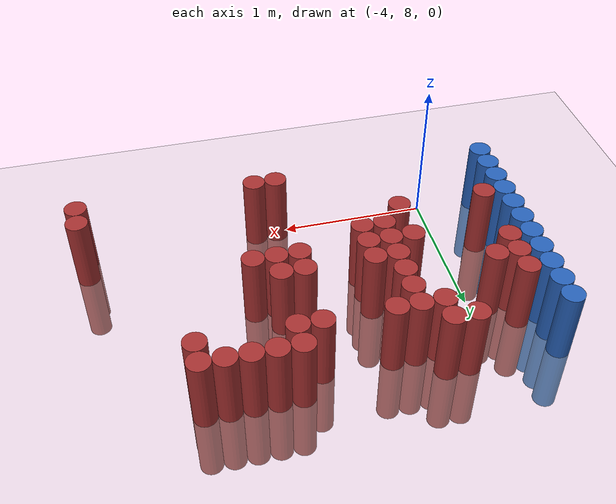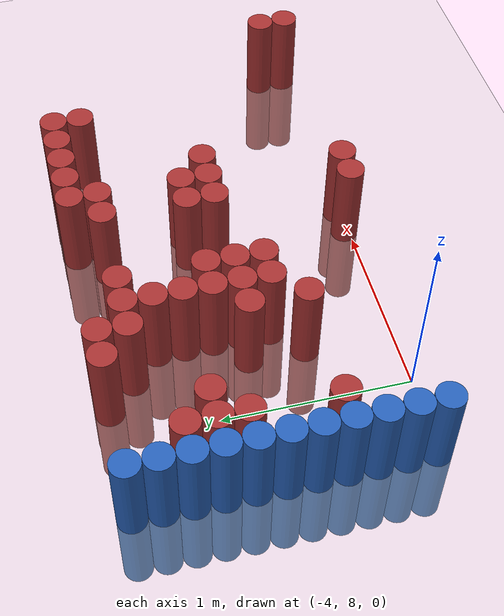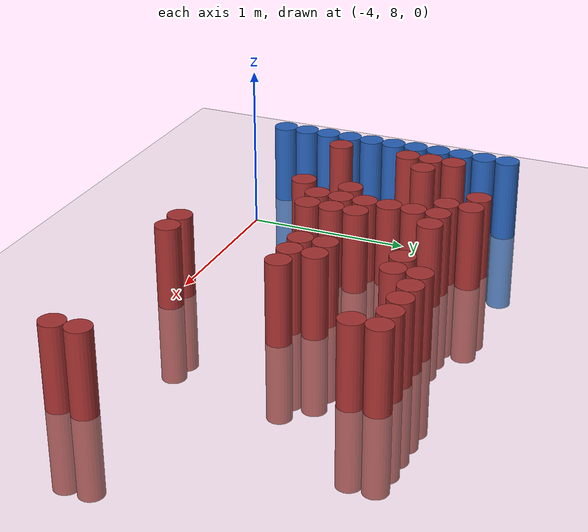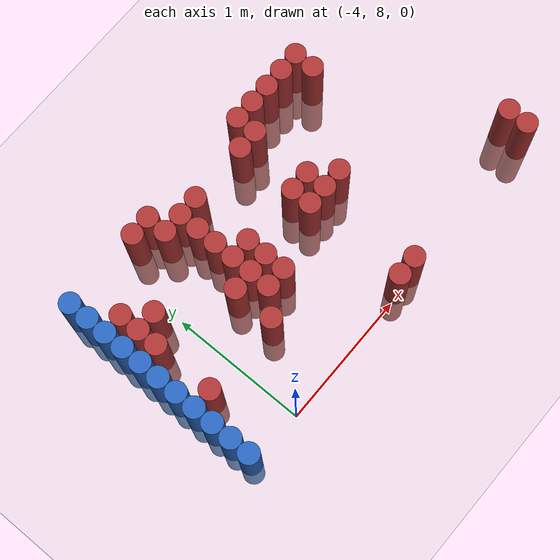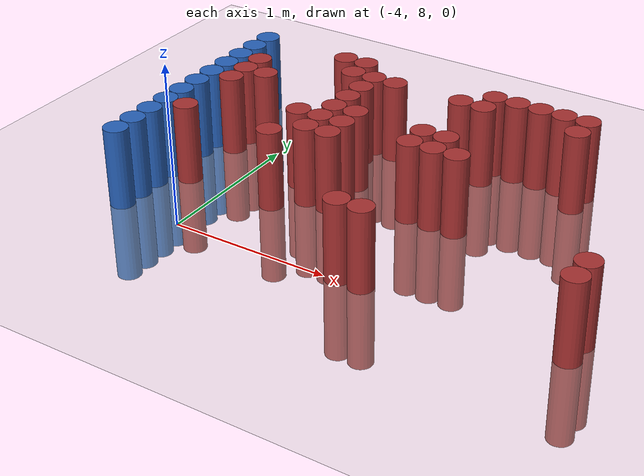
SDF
<sdf version="1.6">
 <world name="default">
  <model name="ground_plane">
   <static>1</static>
   <link name="link">
    <collision name="collision">
     <geometry><plane><normal>0 0 1</normal><size>100 100</size></plane></geometry>
     <surface><friction><ode><mu>100</mu><mu2>50</mu2></ode></friction></surface>
    </collision>
    <visual name="visual">
     <cast_shadows>0</cast_shadows>
     <geometry><plane><normal>0 0 1</normal><size>100 100</size></plane></geometry>
     <material>
      <script><uri>file://media/materials/scripts/gazebo.material</uri><name>Gazebo/Grey</name></script>
     </material>
    </visual>
   </link>
  </model>
  <model name="unit_cylinder_115">
   <static>1</static>
   <pose>-4.425000 8.025000 0.000000 0.000000 0.000000 0.000000</pose>
   <link name="link">
    <inertial>
     <mass>1</mass>
     <inertia><ixx>0.145833</ixx><ixy>0</ixy><ixz>0</ixz><iyy>0.145833</iyy><iyz>0</iyz><izz>0.125</izz></inertia>
    </inertial>
    <collision name="collision">
     <geometry><cylinder><radius>0.075000</radius><length>1</length></cylinder></geometry>
    </collision>
    <visual name="visual">
     <geometry><cylinder><radius>0.075000</radius><length>1</length></cylinder></geometry>
     <material>
      <ambient>0.152000 0.379000 0.720000 1</ambient>
      <diffuse>0.152000 0.379000 0.720000 1</diffuse>
     </material>
     <material>
      <script><name>Gazebo/Grey</name><uri>file://media/materials/scripts/gazebo.material</uri></script>
     </material>
    </visual>
   </link>
  </model>
  <model name="unit_cylinder_116">
   <static>1</static>
   <pose>-4.425000 8.175000 0.000000 0.000000 0.000000 0.000000</pose>
   <link name="link">
    <inertial>
     <mass>1</mass>
     <inertia><ixx>0.145833</ixx><ixy>0</ixy><ixz>0</ixz><iyy>0.145833</iyy><iyz>0</iyz><izz>0.125</izz></inertia>
    </inertial>
    <collision name="collision">
     <geometry><cylinder><radius>0.075000</radius><length>1</length></cylinder></geometry>
    </collision>
    <visual name="visual">
     <geometry><cylinder><radius>0.075000</radius><length>1</length></cylinder></geometry>
     <material>
      <ambient>0.152000 0.379000 0.720000 1</ambient>
      <diffuse>0.152000 0.379000 0.720000 1</diffuse>
     </material>
     <material>
      <script><name>Gazebo/Grey</name><uri>file://media/materials/scripts/gazebo.material</uri></script>
     </material>
    </visual>
   </link>
  </model>
  <model name="unit_cylinder_117">
   <static>1</static>
   <pose>-4.425000 8.325000 0.000000 0.000000 0.000000 0.000000</pose>
   <link name="link">
    <inertial>
     <mass>1</mass>
     <inertia><ixx>0.145833</ixx><ixy>0</ixy><ixz>0</ixz><iyy>0.145833</iyy><iyz>0</iyz><izz>0.125</izz></inertia>
    </inertial>
    <collision name="collision">
     <geometry><cylinder><radius>0.075000</radius><length>1</length></cylinder></geometry>
    </collision>
    <visual name="visual">
     <geometry><cylinder><radius>0.075000</radius><length>1</length></cylinder></geometry>
     <material>
      <ambient>0.152000 0.379000 0.720000 1</ambient>
      <diffuse>0.152000 0.379000 0.720000 1</diffuse>
     </material>
     <material>
      <script><name>Gazebo/Grey</name><uri>file://media/materials/scripts/gazebo.material</uri></script>
     </material>
    </visual>
   </link>
  </model>
  <model name="unit_cylinder_118">
   <static>1</static>
   <pose>-4.425000 8.475000 0.000000 0.000000 0.000000 0.000000</pose>
   <link name="link">
    <inertial>
     <mass>1</mass>
     <inertia><ixx>0.145833</ixx><ixy>0</ixy><ixz>0</ixz><iyy>0.145833</iyy><iyz>0</iyz><izz>0.125</izz></inertia>
    </inertial>
    <collision name="collision">
     <geometry><cylinder><radius>0.075000</radius><length>1</length></cylinder></geometry>
    </collision>
    <visual name="visual">
     <geometry><cylinder><radius>0.075000</radius><length>1</length></cylinder></geometry>
     <material>
      <ambient>0.152000 0.379000 0.720000 1</ambient>
      <diffuse>0.152000 0.379000 0.720000 1</diffuse>
     </material>
     <material>
      <script><name>Gazebo/Grey</name><uri>file://media/materials/scripts/gazebo.material</uri></script>
     </material>
    </visual>
   </link>
  </model>
  <model name="unit_cylinder_119">
   <static>1</static>
   <pose>-4.425000 8.625000 0.000000 0.000000 0.000000 0.000000</pose>
   <link name="link">
    <inertial>
     <mass>1</mass>
     <inertia><ixx>0.145833</ixx><ixy>0</ixy><ixz>0</ixz><iyy>0.145833</iyy><iyz>0</iyz><izz>0.125</izz></inertia>
    </inertial>
    <collision name="collision">
     <geometry><cylinder><radius>0.075000</radius><length>1</length></cylinder></geometry>
    </collision>
    <visual name="visual">
     <geometry><cylinder><radius>0.075000</radius><length>1</length></cylinder></geometry>
     <material>
      <ambient>0.152000 0.379000 0.720000 1</ambient>
      <diffuse>0.152000 0.379000 0.720000 1</diffuse>
     </material>
     <material>
      <script><name>Gazebo/Grey</name><uri>file://media/materials/scripts/gazebo.material</uri></script>
     </material>
    </visual>
   </link>
  </model>
  <model name="unit_cylinder_120">
   <static>1</static>
   <pose>-4.425000 8.775000 0.000000 0.000000 0.000000 0.000000</pose>
   <link name="link">
    <inertial>
     <mass>1</mass>
     <inertia><ixx>0.145833</ixx><ixy>0</ixy><ixz>0</ixz><iyy>0.145833</iyy><iyz>0</iyz><izz>0.125</izz></inertia>
    </inertial>
    <collision name="collision">
     <geometry><cylinder><radius>0.075000</radius><length>1</length></cylinder></geometry>
    </collision>
    <visual name="visual">
     <geometry><cylinder><radius>0.075000</radius><length>1</length></cylinder></geometry>
     <material>
      <ambient>0.152000 0.379000 0.720000 1</ambient>
      <diffuse>0.152000 0.379000 0.720000 1</diffuse>
     </material>
     <material>
      <script><name>Gazebo/Grey</name><uri>file://media/materials/scripts/gazebo.material</uri></script>
     </material>
    </visual>
   </link>
  </model>
  <model name="unit_cylinder_121">
   <static>1</static>
   <pose>-4.425000 8.925000 0.000000 0.000000 0.000000 0.000000</pose>
   <link name="link">
    <inertial>
     <mass>1</mass>
     <inertia><ixx>0.145833</ixx><ixy>0</ixy><ixz>0</ixz><iyy>0.145833</iyy><iyz>0</iyz><izz>0.125</izz></inertia>
    </inertial>
    <collision name="collision">
     <geometry><cylinder><radius>0.075000</radius><length>1</length></cylinder></geometry>
    </collision>
    <visual name="visual">
     <geometry><cylinder><radius>0.075000</radius><length>1</length></cylinder></geometry>
     <material>
      <ambient>0.152000 0.379000 0.720000 1</ambient>
      <diffuse>0.152000 0.379000 0.720000 1</diffuse>
     </material>
     <material>
      <script><name>Gazebo/Grey</name><uri>file://media/materials/scripts/gazebo.material</uri></script>
     </material>
    </visual>
   </link>
  </model>
  <model name="unit_cylinder_122">
   <static>1</static>
   <pose>-4.425000 9.075000 0.000000 0.000000 0.000000 0.000000</pose>
   <link name="link">
    <inertial>
     <mass>1</mass>
     <inertia><ixx>0.145833</ixx><ixy>0</ixy><ixz>0</ixz><iyy>0.145833</iyy><iyz>0</iyz><izz>0.125</izz></inertia>
    </inertial>
    <collision name="collision">
     <geometry><cylinder><radius>0.075000</radius><length>1</length></cylinder></geometry>
    </collision>
    <visual name="visual">
     <geometry><cylinder><radius>0.075000</radius><length>1</length></cylinder></geometry>
     <material>
      <ambient>0.152000 0.379000 0.720000 1</ambient>
      <diffuse>0.152000 0.379000 0.720000 1</diffuse>
     </material>
     <material>
      <script><name>Gazebo/Grey</name><uri>file://media/materials/scripts/gazebo.material</uri></script>
     </material>
    </visual>
   </link>
  </model>
  <model name="unit_cylinder_123">
   <static>1</static>
   <pose>-4.425000 9.225000 0.000000 0.000000 0.000000 0.000000</pose>
   <link name="link">
    <inertial>
     <mass>1</mass>
     <inertia><ixx>0.145833</ixx><ixy>0</ixy><ixz>0</ixz><iyy>0.145833</iyy><iyz>0</iyz><izz>0.125</izz></inertia>
    </inertial>
    <collision name="collision">
     <geometry><cylinder><radius>0.075000</radius><length>1</length></cylinder></geometry>
    </collision>
    <visual name="visual">
     <geometry><cylinder><radius>0.075000</radius><length>1</length></cylinder></geometry>
     <material>
      <ambient>0.152000 0.379000 0.720000 1</ambient>
      <diffuse>0.152000 0.379000 0.720000 1</diffuse>
     </material>
     <material>
      <script><name>Gazebo/Grey</name><uri>file://media/materials/scripts/gazebo.material</uri></script>
     </material>
    </visual>
   </link>
  </model>
  <model name="unit_cylinder_124">
   <static>1</static>
   <pose>-4.425000 9.375000 0.000000 0.000000 0.000000 0.000000</pose>
   <link name="link">
    <inertial>
     <mass>1</mass>
     <inertia><ixx>0.145833</ixx><ixy>0</ixy><ixz>0</ixz><iyy>0.145833</iyy><iyz>0</iyz><izz>0.125</izz></inertia>
    </inertial>
    <collision name="collision">
     <geometry><cylinder><radius>0.075000</radius><length>1</length></cylinder></geometry>
    </collision>
    <visual name="visual">
     <geometry><cylinder><radius>0.075000</radius><length>1</length></cylinder></geometry>
     <material>
      <ambient>0.152000 0.379000 0.720000 1</ambient>
      <diffuse>0.152000 0.379000 0.720000 1</diffuse>
     </material>
     <material>
      <script><name>Gazebo/Grey</name><uri>file://media/materials/scripts/gazebo.material</uri></script>
     </material>
    </visual>
   </link>
  </model>
  <model name="unit_cylinder_125">
   <static>1</static>
   <pose>-4.425000 9.525000 0.000000 0.000000 0.000000 0.000000</pose>
   <link name="link">
    <inertial>
     <mass>1</mass>
     <inertia><ixx>0.145833</ixx><ixy>0</ixy><ixz>0</ixz><iyy>0.145833</iyy><iyz>0</iyz><izz>0.125</izz></inertia>
    </inertial>
    <collision name="collision">
     <geometry><cylinder><radius>0.075000</radius><length>1</length></cylinder></geometry>
    </collision>
    <visual name="visual">
     <geometry><cylinder><radius>0.075000</radius><length>1</length></cylinder></geometry>
     <material>
      <ambient>0.152000 0.379000 0.720000 1</ambient>
      <diffuse>0.152000 0.379000 0.720000 1</diffuse>
     </material>
     <material>
      <script><name>Gazebo/Grey</name><uri>file://media/materials/scripts/gazebo.material</uri></script>
     </material>
    </visual>
   </link>
  </model>
  <model name="unit_cylinder_135">
   <static>1</static>
   <pose>-4.275000 8.475000 0.000000 0.000000 0.000000 0.000000</pose>
   <link name="link">
    <inertial>
     <mass>1</mass>
     <inertia><ixx>0.145833</ixx><ixy>0</ixy><ixz>0</ixz><iyy>0.145833</iyy><iyz>0</iyz><izz>0.125</izz></inertia>
    </inertial>
    <collision name="collision">
     <geometry><cylinder><radius>0.075000</radius><length>1</length></cylinder></geometry>
    </collision>
    <visual name="visual">
     <geometry><cylinder><radius>0.075000</radius><length>1</length></cylinder></geometry>
     <material>
      <ambient>0.648000 0.192000 0.192000 1</ambient>
      <diffuse>0.648000 0.192000 0.192000 1</diffuse>
     </material>
     <material>
      <script><name>Gazebo/Grey</name><uri>file://media/materials/scripts/gazebo.material</uri></script>
     </material>
    </visual>
   </link>
  </model>
  <model name="unit_cylinder_136">
   <static>1</static>
   <pose>-4.275000 8.925000 0.000000 0.000000 0.000000 0.000000</pose>
   <link name="link">
    <inertial>
     <mass>1</mass>
     <inertia><ixx>0.145833</ixx><ixy>0</ixy><ixz>0</ixz><iyy>0.145833</iyy><iyz>0</iyz><izz>0.125</izz></inertia>
    </inertial>
    <collision name="collision">
     <geometry><cylinder><radius>0.075000</radius><length>1</length></cylinder></geometry>
    </collision>
    <visual name="visual">
     <geometry><cylinder><radius>0.075000</radius><length>1</length></cylinder></geometry>
     <material>
      <ambient>0.648000 0.192000 0.192000 1</ambient>
      <diffuse>0.648000 0.192000 0.192000 1</diffuse>
     </material>
     <material>
      <script><name>Gazebo/Grey</name><uri>file://media/materials/scripts/gazebo.material</uri></script>
     </material>
    </visual>
   </link>
  </model>
  <model name="unit_cylinder_137">
   <static>1</static>
   <pose>-4.275000 9.075000 0.000000 0.000000 0.000000 0.000000</pose>
   <link name="link">
    <inertial>
     <mass>1</mass>
     <inertia><ixx>0.145833</ixx><ixy>0</ixy><ixz>0</ixz><iyy>0.145833</iyy><iyz>0</iyz><izz>0.125</izz></inertia>
    </inertial>
    <collision name="collision">
     <geometry><cylinder><radius>0.075000</radius><length>1</length></cylinder></geometry>
    </collision>
    <visual name="visual">
     <geometry><cylinder><radius>0.075000</radius><length>1</length></cylinder></geometry>
     <material>
      <ambient>0.648000 0.192000 0.192000 1</ambient>
      <diffuse>0.648000 0.192000 0.192000 1</diffuse>
     </material>
     <material>
      <script><name>Gazebo/Grey</name><uri>file://media/materials/scripts/gazebo.material</uri></script>
     </material>
    </visual>
   </link>
  </model>
  <model name="unit_cylinder_138">
   <static>1</static>
   <pose>-4.275000 9.225000 0.000000 0.000000 0.000000 0.000000</pose>
   <link name="link">
    <inertial>
     <mass>1</mass>
     <inertia><ixx>0.145833</ixx><ixy>0</ixy><ixz>0</ixz><iyy>0.145833</iyy><iyz>0</iyz><izz>0.125</izz></inertia>
    </inertial>
    <collision name="collision">
     <geometry><cylinder><radius>0.075000</radius><length>1</length></cylinder></geometry>
    </collision>
    <visual name="visual">
     <geometry><cylinder><radius>0.075000</radius><length>1</length></cylinder></geometry>
     <material>
      <ambient>0.648000 0.192000 0.192000 1</ambient>
      <diffuse>0.648000 0.192000 0.192000 1</diffuse>
     </material>
     <material>
      <script><name>Gazebo/Grey</name><uri>file://media/materials/scripts/gazebo.material</uri></script>
     </material>
    </visual>
   </link>
  </model>
  <model name="unit_cylinder_142">
   <static>1</static>
   <pose>-4.125000 9.075000 0.000000 0.000000 0.000000 0.000000</pose>
   <link name="link">
    <inertial>
     <mass>1</mass>
     <inertia><ixx>0.145833</ixx><ixy>0</ixy><ixz>0</ixz><iyy>0.145833</iyy><iyz>0</iyz><izz>0.125</izz></inertia>
    </inertial>
    <collision name="collision">
     <geometry><cylinder><radius>0.075000</radius><length>1</length></cylinder></geometry>
    </collision>
    <visual name="visual">
     <geometry><cylinder><radius>0.075000</radius><length>1</length></cylinder></geometry>
     <material>
      <ambient>0.648000 0.192000 0.192000 1</ambient>
      <diffuse>0.648000 0.192000 0.192000 1</diffuse>
     </material>
     <material>
      <script><name>Gazebo/Grey</name><uri>file://media/materials/scripts/gazebo.material</uri></script>
     </material>
    </visual>
   </link>
  </model>
  <model name="unit_cylinder_157">
   <static>1</static>
   <pose>-3.825000 9.525000 0.000000 0.000000 0.000000 0.000000</pose>
   <link name="link">
    <inertial>
     <mass>1</mass>
     <inertia><ixx>0.145833</ixx><ixy>0</ixy><ixz>0</ixz><iyy>0.145833</iyy><iyz>0</iyz><izz>0.125</izz></inertia>
    </inertial>
    <collision name="collision">
     <geometry><cylinder><radius>0.075000</radius><length>1</length></cylinder></geometry>
    </collision>
    <visual name="visual">
     <geometry><cylinder><radius>0.075000</radius><length>1</length></cylinder></geometry>
     <material>
      <ambient>0.648000 0.192000 0.192000 1</ambient>
      <diffuse>0.648000 0.192000 0.192000 1</diffuse>
     </material>
     <material>
      <script><name>Gazebo/Grey</name><uri>file://media/materials/scripts/gazebo.material</uri></script>
     </material>
    </visual>
   </link>
  </model>
  <model name="unit_cylinder_162">
   <static>1</static>
   <pose>-3.675000 8.475000 0.000000 0.000000 0.000000 0.000000</pose>
   <link name="link">
    <inertial>
     <mass>1</mass>
     <inertia><ixx>0.145833</ixx><ixy>0</ixy><ixz>0</ixz><iyy>0.145833</iyy><iyz>0</iyz><izz>0.125</izz></inertia>
    </inertial>
    <collision name="collision">
     <geometry><cylinder><radius>0.075000</radius><length>1</length></cylinder></geometry>
    </collision>
    <visual name="visual">
     <geometry><cylinder><radius>0.075000</radius><length>1</length></cylinder></geometry>
     <material>
      <ambient>0.648000 0.192000 0.192000 1</ambient>
      <diffuse>0.648000 0.192000 0.192000 1</diffuse>
     </material>
     <material>
      <script><name>Gazebo/Grey</name><uri>file://media/materials/scripts/gazebo.material</uri></script>
     </material>
    </visual>
   </link>
  </model>
  <model name="unit_cylinder_163">
   <static>1</static>
   <pose>-3.675000 8.775000 0.000000 0.000000 0.000000 0.000000</pose>
   <link name="link">
    <inertial>
     <mass>1</mass>
     <inertia><ixx>0.145833</ixx><ixy>0</ixy><ixz>0</ixz><iyy>0.145833</iyy><iyz>0</iyz><izz>0.125</izz></inertia>
    </inertial>
    <collision name="collision">
     <geometry><cylinder><radius>0.075000</radius><length>1</length></cylinder></geometry>
    </collision>
    <visual name="visual">
     <geometry><cylinder><radius>0.075000</radius><length>1</length></cylinder></geometry>
     <material>
      <ambient>0.648000 0.192000 0.192000 1</ambient>
      <diffuse>0.648000 0.192000 0.192000 1</diffuse>
     </material>
     <material>
      <script><name>Gazebo/Grey</name><uri>file://media/materials/scripts/gazebo.material</uri></script>
     </material>
    </visual>
   </link>
  </model>
  <model name="unit_cylinder_164">
   <static>1</static>
   <pose>-3.675000 9.375000 0.000000 0.000000 0.000000 0.000000</pose>
   <link name="link">
    <inertial>
     <mass>1</mass>
     <inertia><ixx>0.145833</ixx><ixy>0</ixy><ixz>0</ixz><iyy>0.145833</iyy><iyz>0</iyz><izz>0.125</izz></inertia>
    </inertial>
    <collision name="collision">
     <geometry><cylinder><radius>0.075000</radius><length>1</length></cylinder></geometry>
    </collision>
    <visual name="visual">
     <geometry><cylinder><radius>0.075000</radius><length>1</length></cylinder></geometry>
     <material>
      <ambient>0.648000 0.192000 0.192000 1</ambient>
      <diffuse>0.648000 0.192000 0.192000 1</diffuse>
     </material>
     <material>
      <script><name>Gazebo/Grey</name><uri>file://media/materials/scripts/gazebo.material</uri></script>
     </material>
    </visual>
   </link>
  </model>
  <model name="unit_cylinder_165">
   <static>1</static>
   <pose>-3.675000 9.525000 0.000000 0.000000 0.000000 0.000000</pose>
   <link name="link">
    <inertial>
     <mass>1</mass>
     <inertia><ixx>0.145833</ixx><ixy>0</ixy><ixz>0</ixz><iyy>0.145833</iyy><iyz>0</iyz><izz>0.125</izz></inertia>
    </inertial>
    <collision name="collision">
     <geometry><cylinder><radius>0.075000</radius><length>1</length></cylinder></geometry>
    </collision>
    <visual name="visual">
     <geometry><cylinder><radius>0.075000</radius><length>1</length></cylinder></geometry>
     <material>
      <ambient>0.648000 0.192000 0.192000 1</ambient>
      <diffuse>0.648000 0.192000 0.192000 1</diffuse>
     </material>
     <material>
      <script><name>Gazebo/Grey</name><uri>file://media/materials/scripts/gazebo.material</uri></script>
     </material>
    </visual>
   </link>
  </model>
  <model name="unit_cylinder_166">
   <static>1</static>
   <pose>-3.525000 8.625000 0.000000 0.000000 0.000000 0.000000</pose>
   <link name="link">
    <inertial>
     <mass>1</mass>
     <inertia><ixx>0.145833</ixx><ixy>0</ixy><ixz>0</ixz><iyy>0.145833</iyy><iyz>0</iyz><izz>0.125</izz></inertia>
    </inertial>
    <collision name="collision">
     <geometry><cylinder><radius>0.075000</radius><length>1</length></cylinder></geometry>
    </collision>
    <visual name="visual">
     <geometry><cylinder><radius>0.075000</radius><length>1</length></cylinder></geometry>
     <material>
      <ambient>0.648000 0.192000 0.192000 1</ambient>
      <diffuse>0.648000 0.192000 0.192000 1</diffuse>
     </material>
     <material>
      <script><name>Gazebo/Grey</name><uri>file://media/materials/scripts/gazebo.material</uri></script>
     </material>
    </visual>
   </link>
  </model>
  <model name="unit_cylinder_167">
   <static>1</static>
   <pose>-3.525000 8.775000 0.000000 0.000000 0.000000 0.000000</pose>
   <link name="link">
    <inertial>
     <mass>1</mass>
     <inertia><ixx>0.145833</ixx><ixy>0</ixy><ixz>0</ixz><iyy>0.145833</iyy><iyz>0</iyz><izz>0.125</izz></inertia>
    </inertial>
    <collision name="collision">
     <geometry><cylinder><radius>0.075000</radius><length>1</length></cylinder></geometry>
    </collision>
    <visual name="visual">
     <geometry><cylinder><radius>0.075000</radius><length>1</length></cylinder></geometry>
     <material>
      <ambient>0.648000 0.192000 0.192000 1</ambient>
      <diffuse>0.648000 0.192000 0.192000 1</diffuse>
     </material>
     <material>
      <script><name>Gazebo/Grey</name><uri>file://media/materials/scripts/gazebo.material</uri></script>
     </material>
    </visual>
   </link>
  </model>
  <model name="unit_cylinder_168">
   <static>1</static>
   <pose>-3.525000 8.925000 0.000000 0.000000 0.000000 0.000000</pose>
   <link name="link">
    <inertial>
     <mass>1</mass>
     <inertia><ixx>0.145833</ixx><ixy>0</ixy><ixz>0</ixz><iyy>0.145833</iyy><iyz>0</iyz><izz>0.125</izz></inertia>
    </inertial>
    <collision name="collision">
     <geometry><cylinder><radius>0.075000</radius><length>1</length></cylinder></geometry>
    </collision>
    <visual name="visual">
     <geometry><cylinder><radius>0.075000</radius><length>1</length></cylinder></geometry>
     <material>
      <ambient>0.648000 0.192000 0.192000 1</ambient>
      <diffuse>0.648000 0.192000 0.192000 1</diffuse>
     </material>
     <material>
      <script><name>Gazebo/Grey</name><uri>file://media/materials/scripts/gazebo.material</uri></script>
     </material>
    </visual>
   </link>
  </model>
  <model name="unit_cylinder_169">
   <static>1</static>
   <pose>-3.525000 9.075000 0.000000 0.000000 0.000000 0.000000</pose>
   <link name="link">
    <inertial>
     <mass>1</mass>
     <inertia><ixx>0.145833</ixx><ixy>0</ixy><ixz>0</ixz><iyy>0.145833</iyy><iyz>0</iyz><izz>0.125</izz></inertia>
    </inertial>
    <collision name="collision">
     <geometry><cylinder><radius>0.075000</radius><length>1</length></cylinder></geometry>
    </collision>
    <visual name="visual">
     <geometry><cylinder><radius>0.075000</radius><length>1</length></cylinder></geometry>
     <material>
      <ambient>0.648000 0.192000 0.192000 1</ambient>
      <diffuse>0.648000 0.192000 0.192000 1</diffuse>
     </material>
     <material>
      <script><name>Gazebo/Grey</name><uri>file://media/materials/scripts/gazebo.material</uri></script>
     </material>
    </visual>
   </link>
  </model>
  <model name="unit_cylinder_170">
   <static>1</static>
   <pose>-3.525000 9.225000 0.000000 0.000000 0.000000 0.000000</pose>
   <link name="link">
    <inertial>
     <mass>1</mass>
     <inertia><ixx>0.145833</ixx><ixy>0</ixy><ixz>0</ixz><iyy>0.145833</iyy><iyz>0</iyz><izz>0.125</izz></inertia>
    </inertial>
    <collision name="collision">
     <geometry><cylinder><radius>0.075000</radius><length>1</length></cylinder></geometry>
    </collision>
    <visual name="visual">
     <geometry><cylinder><radius>0.075000</radius><length>1</length></cylinder></geometry>
     <material>
      <ambient>0.648000 0.192000 0.192000 1</ambient>
      <diffuse>0.648000 0.192000 0.192000 1</diffuse>
     </material>
     <material>
      <script><name>Gazebo/Grey</name><uri>file://media/materials/scripts/gazebo.material</uri></script>
     </material>
    </visual>
   </link>
  </model>
  <model name="unit_cylinder_171">
   <static>1</static>
   <pose>-3.525000 9.375000 0.000000 0.000000 0.000000 0.000000</pose>
   <link name="link">
    <inertial>
     <mass>1</mass>
     <inertia><ixx>0.145833</ixx><ixy>0</ixy><ixz>0</ixz><iyy>0.145833</iyy><iyz>0</iyz><izz>0.125</izz></inertia>
    </inertial>
    <collision name="collision">
     <geometry><cylinder><radius>0.075000</radius><length>1</length></cylinder></geometry>
    </collision>
    <visual name="visual">
     <geometry><cylinder><radius>0.075000</radius><length>1</length></cylinder></geometry>
     <material>
      <ambient>0.648000 0.192000 0.192000 1</ambient>
      <diffuse>0.648000 0.192000 0.192000 1</diffuse>
     </material>
     <material>
      <script><name>Gazebo/Grey</name><uri>file://media/materials/scripts/gazebo.material</uri></script>
     </material>
    </visual>
   </link>
  </model>
  <model name="unit_cylinder_176">
   <static>1</static>
   <pose>-3.375000 8.625000 0.000000 0.000000 0.000000 0.000000</pose>
   <link name="link">
    <inertial>
     <mass>1</mass>
     <inertia><ixx>0.145833</ixx><ixy>0</ixy><ixz>0</ixz><iyy>0.145833</iyy><iyz>0</iyz><izz>0.125</izz></inertia>
    </inertial>
    <collision name="collision">
     <geometry><cylinder><radius>0.075000</radius><length>1</length></cylinder></geometry>
    </collision>
    <visual name="visual">
     <geometry><cylinder><radius>0.075000</radius><length>1</length></cylinder></geometry>
     <material>
      <ambient>0.648000 0.192000 0.192000 1</ambient>
      <diffuse>0.648000 0.192000 0.192000 1</diffuse>
     </material>
     <material>
      <script><name>Gazebo/Grey</name><uri>file://media/materials/scripts/gazebo.material</uri></script>
     </material>
    </visual>
   </link>
  </model>
  <model name="unit_cylinder_177">
   <static>1</static>
   <pose>-3.375000 8.775000 0.000000 0.000000 0.000000 0.000000</pose>
   <link name="link">
    <inertial>
     <mass>1</mass>
     <inertia><ixx>0.145833</ixx><ixy>0</ixy><ixz>0</ixz><iyy>0.145833</iyy><iyz>0</iyz><izz>0.125</izz></inertia>
    </inertial>
    <collision name="collision">
     <geometry><cylinder><radius>0.075000</radius><length>1</length></cylinder></geometry>
    </collision>
    <visual name="visual">
     <geometry><cylinder><radius>0.075000</radius><length>1</length></cylinder></geometry>
     <material>
      <ambient>0.648000 0.192000 0.192000 1</ambient>
      <diffuse>0.648000 0.192000 0.192000 1</diffuse>
     </material>
     <material>
      <script><name>Gazebo/Grey</name><uri>file://media/materials/scripts/gazebo.material</uri></script>
     </material>
    </visual>
   </link>
  </model>
  <model name="unit_cylinder_178">
   <static>1</static>
   <pose>-3.375000 8.925000 0.000000 0.000000 0.000000 0.000000</pose>
   <link name="link">
    <inertial>
     <mass>1</mass>
     <inertia><ixx>0.145833</ixx><ixy>0</ixy><ixz>0</ixz><iyy>0.145833</iyy><iyz>0</iyz><izz>0.125</izz></inertia>
    </inertial>
    <collision name="collision">
     <geometry><cylinder><radius>0.075000</radius><length>1</length></cylinder></geometry>
    </collision>
    <visual name="visual">
     <geometry><cylinder><radius>0.075000</radius><length>1</length></cylinder></geometry>
     <material>
      <ambient>0.648000 0.192000 0.192000 1</ambient>
      <diffuse>0.648000 0.192000 0.192000 1</diffuse>
     </material>
     <material>
      <script><name>Gazebo/Grey</name><uri>file://media/materials/scripts/gazebo.material</uri></script>
     </material>
    </visual>
   </link>
  </model>
  <model name="unit_cylinder_179">
   <static>1</static>
   <pose>-3.375000 9.375000 0.000000 0.000000 0.000000 0.000000</pose>
   <link name="link">
    <inertial>
     <mass>1</mass>
     <inertia><ixx>0.145833</ixx><ixy>0</ixy><ixz>0</ixz><iyy>0.145833</iyy><iyz>0</iyz><izz>0.125</izz></inertia>
    </inertial>
    <collision name="collision">
     <geometry><cylinder><radius>0.075000</radius><length>1</length></cylinder></geometry>
    </collision>
    <visual name="visual">
     <geometry><cylinder><radius>0.075000</radius><length>1</length></cylinder></geometry>
     <material>
      <ambient>0.648000 0.192000 0.192000 1</ambient>
      <diffuse>0.648000 0.192000 0.192000 1</diffuse>
     </material>
     <material>
      <script><name>Gazebo/Grey</name><uri>file://media/materials/scripts/gazebo.material</uri></script>
     </material>
    </visual>
   </link>
  </model>
  <model name="unit_cylinder_184">
   <static>1</static>
   <pose>-2.925000 8.025000 0.000000 0.000000 0.000000 0.000000</pose>
   <link name="link">
    <inertial>
     <mass>1</mass>
     <inertia><ixx>0.145833</ixx><ixy>0</ixy><ixz>0</ixz><iyy>0.145833</iyy><iyz>0</iyz><izz>0.125</izz></inertia>
    </inertial>
    <collision name="collision">
     <geometry><cylinder><radius>0.075000</radius><length>1</length></cylinder></geometry>
    </collision>
    <visual name="visual">
     <geometry><cylinder><radius>0.075000</radius><length>1</length></cylinder></geometry>
     <material>
      <ambient>0.648000 0.192000 0.192000 1</ambient>
      <diffuse>0.648000 0.192000 0.192000 1</diffuse>
     </material>
     <material>
      <script><name>Gazebo/Grey</name><uri>file://media/materials/scripts/gazebo.material</uri></script>
     </material>
    </visual>
   </link>
  </model>
  <model name="unit_cylinder_185">
   <static>1</static>
   <pose>-2.925000 8.775000 0.000000 0.000000 0.000000 0.000000</pose>
   <link name="link">
    <inertial>
     <mass>1</mass>
     <inertia><ixx>0.145833</ixx><ixy>0</ixy><ixz>0</ixz><iyy>0.145833</iyy><iyz>0</iyz><izz>0.125</izz></inertia>
    </inertial>
    <collision name="collision">
     <geometry><cylinder><radius>0.075000</radius><length>1</length></cylinder></geometry>
    </collision>
    <visual name="visual">
     <geometry><cylinder><radius>0.075000</radius><length>1</length></cylinder></geometry>
     <material>
      <ambient>0.648000 0.192000 0.192000 1</ambient>
      <diffuse>0.648000 0.192000 0.192000 1</diffuse>
     </material>
     <material>
      <script><name>Gazebo/Grey</name><uri>file://media/materials/scripts/gazebo.material</uri></script>
     </material>
    </visual>
   </link>
  </model>
  <model name="unit_cylinder_186">
   <static>1</static>
   <pose>-2.925000 8.925000 0.000000 0.000000 0.000000 0.000000</pose>
   <link name="link">
    <inertial>
     <mass>1</mass>
     <inertia><ixx>0.145833</ixx><ixy>0</ixy><ixz>0</ixz><iyy>0.145833</iyy><iyz>0</iyz><izz>0.125</izz></inertia>
    </inertial>
    <collision name="collision">
     <geometry><cylinder><radius>0.075000</radius><length>1</length></cylinder></geometry>
    </collision>
    <visual name="visual">
     <geometry><cylinder><radius>0.075000</radius><length>1</length></cylinder></geometry>
     <material>
      <ambient>0.648000 0.192000 0.192000 1</ambient>
      <diffuse>0.648000 0.192000 0.192000 1</diffuse>
     </material>
     <material>
      <script><name>Gazebo/Grey</name><uri>file://media/materials/scripts/gazebo.material</uri></script>
     </material>
    </visual>
   </link>
  </model>
  <model name="unit_cylinder_187">
   <static>1</static>
   <pose>-2.925000 9.375000 0.000000 0.000000 0.000000 0.000000</pose>
   <link name="link">
    <inertial>
     <mass>1</mass>
     <inertia><ixx>0.145833</ixx><ixy>0</ixy><ixz>0</ixz><iyy>0.145833</iyy><iyz>0</iyz><izz>0.125</izz></inertia>
    </inertial>
    <collision name="collision">
     <geometry><cylinder><radius>0.075000</radius><length>1</length></cylinder></geometry>
    </collision>
    <visual name="visual">
     <geometry><cylinder><radius>0.075000</radius><length>1</length></cylinder></geometry>
     <material>
      <ambient>0.648000 0.192000 0.192000 1</ambient>
      <diffuse>0.648000 0.192000 0.192000 1</diffuse>
     </material>
     <material>
      <script><name>Gazebo/Grey</name><uri>file://media/materials/scripts/gazebo.material</uri></script>
     </material>
    </visual>
   </link>
  </model>
  <model name="unit_cylinder_189">
   <static>1</static>
   <pose>-2.775000 8.025000 0.000000 0.000000 0.000000 0.000000</pose>
   <link name="link">
    <inertial>
     <mass>1</mass>
     <inertia><ixx>0.145833</ixx><ixy>0</ixy><ixz>0</ixz><iyy>0.145833</iyy><iyz>0</iyz><izz>0.125</izz></inertia>
    </inertial>
    <collision name="collision">
     <geometry><cylinder><radius>0.075000</radius><length>1</length></cylinder></geometry>
    </collision>
    <visual name="visual">
     <geometry><cylinder><radius>0.075000</radius><length>1</length></cylinder></geometry>
     <material>
      <ambient>0.648000 0.192000 0.192000 1</ambient>
      <diffuse>0.648000 0.192000 0.192000 1</diffuse>
     </material>
     <material>
      <script><name>Gazebo/Grey</name><uri>file://media/materials/scripts/gazebo.material</uri></script>
     </material>
    </visual>
   </link>
  </model>
  <model name="unit_cylinder_190">
   <static>1</static>
   <pose>-2.775000 8.775000 0.000000 0.000000 0.000000 0.000000</pose>
   <link name="link">
    <inertial>
     <mass>1</mass>
     <inertia><ixx>0.145833</ixx><ixy>0</ixy><ixz>0</ixz><iyy>0.145833</iyy><iyz>0</iyz><izz>0.125</izz></inertia>
    </inertial>
    <collision name="collision">
     <geometry><cylinder><radius>0.075000</radius><length>1</length></cylinder></geometry>
    </collision>
    <visual name="visual">
     <geometry><cylinder><radius>0.075000</radius><length>1</length></cylinder></geometry>
     <material>
      <ambient>0.648000 0.192000 0.192000 1</ambient>
      <diffuse>0.648000 0.192000 0.192000 1</diffuse>
     </material>
     <material>
      <script><name>Gazebo/Grey</name><uri>file://media/materials/scripts/gazebo.material</uri></script>
     </material>
    </visual>
   </link>
  </model>
  <model name="unit_cylinder_191">
   <static>1</static>
   <pose>-2.775000 8.925000 0.000000 0.000000 0.000000 0.000000</pose>
   <link name="link">
    <inertial>
     <mass>1</mass>
     <inertia><ixx>0.145833</ixx><ixy>0</ixy><ixz>0</ixz><iyy>0.145833</iyy><iyz>0</iyz><izz>0.125</izz></inertia>
    </inertial>
    <collision name="collision">
     <geometry><cylinder><radius>0.075000</radius><length>1</length></cylinder></geometry>
    </collision>
    <visual name="visual">
     <geometry><cylinder><radius>0.075000</radius><length>1</length></cylinder></geometry>
     <material>
      <ambient>0.648000 0.192000 0.192000 1</ambient>
      <diffuse>0.648000 0.192000 0.192000 1</diffuse>
     </material>
     <material>
      <script><name>Gazebo/Grey</name><uri>file://media/materials/scripts/gazebo.material</uri></script>
     </material>
    </visual>
   </link>
  </model>
  <model name="unit_cylinder_192">
   <static>1</static>
   <pose>-2.775000 9.375000 0.000000 0.000000 0.000000 0.000000</pose>
   <link name="link">
    <inertial>
     <mass>1</mass>
     <inertia><ixx>0.145833</ixx><ixy>0</ixy><ixz>0</ixz><iyy>0.145833</iyy><iyz>0</iyz><izz>0.125</izz></inertia>
    </inertial>
    <collision name="collision">
     <geometry><cylinder><radius>0.075000</radius><length>1</length></cylinder></geometry>
    </collision>
    <visual name="visual">
     <geometry><cylinder><radius>0.075000</radius><length>1</length></cylinder></geometry>
     <material>
      <ambient>0.648000 0.192000 0.192000 1</ambient>
      <diffuse>0.648000 0.192000 0.192000 1</diffuse>
     </material>
     <material>
      <script><name>Gazebo/Grey</name><uri>file://media/materials/scripts/gazebo.material</uri></script>
     </material>
    </visual>
   </link>
  </model>
  <model name="unit_cylinder_193">
   <static>1</static>
   <pose>-2.775000 9.525000 0.000000 0.000000 0.000000 0.000000</pose>
   <link name="link">
    <inertial>
     <mass>1</mass>
     <inertia><ixx>0.145833</ixx><ixy>0</ixy><ixz>0</ixz><iyy>0.145833</iyy><iyz>0</iyz><izz>0.125</izz></inertia>
    </inertial>
    <collision name="collision">
     <geometry><cylinder><radius>0.075000</radius><length>1</length></cylinder></geometry>
    </collision>
    <visual name="visual">
     <geometry><cylinder><radius>0.075000</radius><length>1</length></cylinder></geometry>
     <material>
      <ambient>0.648000 0.192000 0.192000 1</ambient>
      <diffuse>0.648000 0.192000 0.192000 1</diffuse>
     </material>
     <material>
      <script><name>Gazebo/Grey</name><uri>file://media/materials/scripts/gazebo.material</uri></script>
     </material>
    </visual>
   </link>
  </model>
  <model name="unit_cylinder_197">
   <static>1</static>
   <pose>-2.625000 8.775000 0.000000 0.000000 0.000000 0.000000</pose>
   <link name="link">
    <inertial>
     <mass>1</mass>
     <inertia><ixx>0.145833</ixx><ixy>0</ixy><ixz>0</ixz><iyy>0.145833</iyy><iyz>0</iyz><izz>0.125</izz></inertia>
    </inertial>
    <collision name="collision">
     <geometry><cylinder><radius>0.075000</radius><length>1</length></cylinder></geometry>
    </collision>
    <visual name="visual">
     <geometry><cylinder><radius>0.075000</radius><length>1</length></cylinder></geometry>
     <material>
      <ambient>0.648000 0.192000 0.192000 1</ambient>
      <diffuse>0.648000 0.192000 0.192000 1</diffuse>
     </material>
     <material>
      <script><name>Gazebo/Grey</name><uri>file://media/materials/scripts/gazebo.material</uri></script>
     </material>
    </visual>
   </link>
  </model>
  <model name="unit_cylinder_198">
   <static>1</static>
   <pose>-2.625000 9.525000 0.000000 0.000000 0.000000 0.000000</pose>
   <link name="link">
    <inertial>
     <mass>1</mass>
     <inertia><ixx>0.145833</ixx><ixy>0</ixy><ixz>0</ixz><iyy>0.145833</iyy><iyz>0</iyz><izz>0.125</izz></inertia>
    </inertial>
    <collision name="collision">
     <geometry><cylinder><radius>0.075000</radius><length>1</length></cylinder></geometry>
    </collision>
    <visual name="visual">
     <geometry><cylinder><radius>0.075000</radius><length>1</length></cylinder></geometry>
     <material>
      <ambient>0.648000 0.192000 0.192000 1</ambient>
      <diffuse>0.648000 0.192000 0.192000 1</diffuse>
     </material>
     <material>
      <script><name>Gazebo/Grey</name><uri>file://media/materials/scripts/gazebo.material</uri></script>
     </material>
    </visual>
   </link>
  </model>
  <model name="unit_cylinder_204">
   <static>1</static>
   <pose>-2.475000 9.525000 0.000000 0.000000 0.000000 0.000000</pose>
   <link name="link">
    <inertial>
     <mass>1</mass>
     <inertia><ixx>0.145833</ixx><ixy>0</ixy><ixz>0</ixz><iyy>0.145833</iyy><iyz>0</iyz><izz>0.125</izz></inertia>
    </inertial>
    <collision name="collision">
     <geometry><cylinder><radius>0.075000</radius><length>1</length></cylinder></geometry>
    </collision>
    <visual name="visual">
     <geometry><cylinder><radius>0.075000</radius><length>1</length></cylinder></geometry>
     <material>
      <ambient>0.648000 0.192000 0.192000 1</ambient>
      <diffuse>0.648000 0.192000 0.192000 1</diffuse>
     </material>
     <material>
      <script><name>Gazebo/Grey</name><uri>file://media/materials/scripts/gazebo.material</uri></script>
     </material>
    </visual>
   </link>
  </model>
  <model name="unit_cylinder_207">
   <static>1</static>
   <pose>-2.325000 9.525000 0.000000 0.000000 0.000000 0.000000</pose>
   <link name="link">
    <inertial>
     <mass>1</mass>
     <inertia><ixx>0.145833</ixx><ixy>0</ixy><ixz>0</ixz><iyy>0.145833</iyy><iyz>0</iyz><izz>0.125</izz></inertia>
    </inertial>
    <collision name="collision">
     <geometry><cylinder><radius>0.075000</radius><length>1</length></cylinder></geometry>
    </collision>
    <visual name="visual">
     <geometry><cylinder><radius>0.075000</radius><length>1</length></cylinder></geometry>
     <material>
      <ambient>0.648000 0.192000 0.192000 1</ambient>
      <diffuse>0.648000 0.192000 0.192000 1</diffuse>
     </material>
     <material>
      <script><name>Gazebo/Grey</name><uri>file://media/materials/scripts/gazebo.material</uri></script>
     </material>
    </visual>
   </link>
  </model>
  <model name="unit_cylinder_212">
   <static>1</static>
   <pose>-2.175000 9.375000 0.000000 0.000000 0.000000 0.000000</pose>
   <link name="link">
    <inertial>
     <mass>1</mass>
     <inertia><ixx>0.145833</ixx><ixy>0</ixy><ixz>0</ixz><iyy>0.145833</iyy><iyz>0</iyz><izz>0.125</izz></inertia>
    </inertial>
    <collision name="collision">
     <geometry><cylinder><radius>0.075000</radius><length>1</length></cylinder></geometry>
    </collision>
    <visual name="visual">
     <geometry><cylinder><radius>0.075000</radius><length>1</length></cylinder></geometry>
     <material>
      <ambient>0.648000 0.192000 0.192000 1</ambient>
      <diffuse>0.648000 0.192000 0.192000 1</diffuse>
     </material>
     <material>
      <script><name>Gazebo/Grey</name><uri>file://media/materials/scripts/gazebo.material</uri></script>
     </material>
    </visual>
   </link>
  </model>
  <model name="unit_cylinder_213">
   <static>1</static>
   <pose>-2.175000 9.525000 0.000000 0.000000 0.000000 0.000000</pose>
   <link name="link">
    <inertial>
     <mass>1</mass>
     <inertia><ixx>0.145833</ixx><ixy>0</ixy><ixz>0</ixz><iyy>0.145833</iyy><iyz>0</iyz><izz>0.125</izz></inertia>
    </inertial>
    <collision name="collision">
     <geometry><cylinder><radius>0.075000</radius><length>1</length></cylinder></geometry>
    </collision>
    <visual name="visual">
     <geometry><cylinder><radius>0.075000</radius><length>1</length></cylinder></geometry>
     <material>
      <ambient>0.648000 0.192000 0.192000 1</ambient>
      <diffuse>0.648000 0.192000 0.192000 1</diffuse>
     </material>
     <material>
      <script><name>Gazebo/Grey</name><uri>file://media/materials/scripts/gazebo.material</uri></script>
     </material>
    </visual>
   </link>
  </model>
  <model name="unit_cylinder_227">
   <static>1</static>
   <pose>-1.575000 8.025000 0.000000 0.000000 0.000000 0.000000</pose>
   <link name="link">
    <inertial>
     <mass>1</mass>
     <inertia><ixx>0.145833</ixx><ixy>0</ixy><ixz>0</ixz><iyy>0.145833</iyy><iyz>0</iyz><izz>0.125</izz></inertia>
    </inertial>
    <collision name="collision">
     <geometry><cylinder><radius>0.075000</radius><length>1</length></cylinder></geometry>
    </collision>
    <visual name="visual">
     <geometry><cylinder><radius>0.075000</radius><length>1</length></cylinder></geometry>
     <material>
      <ambient>0.648000 0.192000 0.192000 1</ambient>
      <diffuse>0.648000 0.192000 0.192000 1</diffuse>
     </material>
     <material>
      <script><name>Gazebo/Grey</name><uri>file://media/materials/scripts/gazebo.material</uri></script>
     </material>
    </visual>
   </link>
  </model>
  <model name="unit_cylinder_228">
   <static>1</static>
   <pose>-1.575000 8.175000 0.000000 0.000000 0.000000 0.000000</pose>
   <link name="link">
    <inertial>
     <mass>1</mass>
     <inertia><ixx>0.145833</ixx><ixy>0</ixy><ixz>0</ixz><iyy>0.145833</iyy><iyz>0</iyz><izz>0.125</izz></inertia>
    </inertial>
    <collision name="collision">
     <geometry><cylinder><radius>0.075000</radius><length>1</length></cylinder></geometry>
    </collision>
    <visual name="visual">
     <geometry><cylinder><radius>0.075000</radius><length>1</length></cylinder></geometry>
     <material>
      <ambient>0.648000 0.192000 0.192000 1</ambient>
      <diffuse>0.648000 0.192000 0.192000 1</diffuse>
     </material>
     <material>
      <script><name>Gazebo/Grey</name><uri>file://media/materials/scripts/gazebo.material</uri></script>
     </material>
    </visual>
   </link>
  </model>
 </world>
</sdf>
